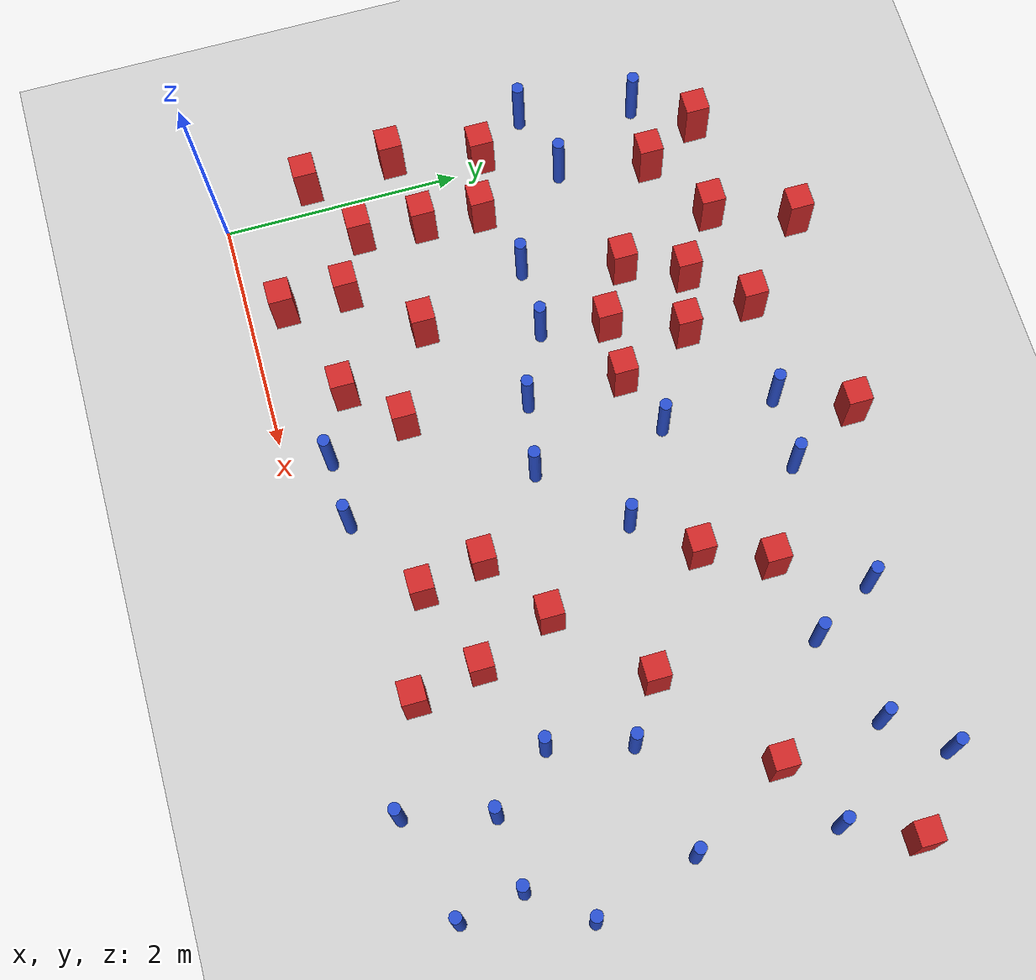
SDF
<sdf version="1.6">
 <world name="default">
  <model name="ground_plane">
   <static>1</static>
   <link name="link">
    <collision name="collision">
     <geometry><plane><normal>0 0 1</normal><size>100 100</size></plane></geometry>
     <surface><friction><ode><mu>100</mu><mu2>50</mu2></ode></friction></surface>
    </collision>
    <visual name="visual">
     <cast_shadows>0</cast_shadows>
     <geometry><plane><normal>0 0 1</normal><size>100 100</size></plane></geometry>
     <material>
      <ambient>1.0 1.0 1.0 1.0</ambient>
      <diffuse>0.8 0.8 0.8 1.0</diffuse>
      <specular>0.01 0.01 0.01 1.000000</specular>
     </material>
    </visual>
   </link>
  </model>
  <model name="square_post_obstacle13">
   <static>true</static>
   <pose>0.120368586204 4.11371070803 1.91545236811e-07 -7.35059704564e-06 1.12565212e-07 2.39332434364e-05</pose>
   <link name="link">
    <pose>0 0 0.25 0 -0 0</pose>
    <inertial>
     <mass>100</mass>
     <inertia>
      <ixx>0.166667</ixx>
      <ixy>0</ixy>
      <ixz>0</ixz>
      <iyy>0.166667</iyy>
      <iyz>0</iyz>
      <izz>0.166667</izz>
     </inertia>
    </inertial>
    <collision name="collision"><geometry><box><size>.2 .2 .5</size></box></geometry></collision>
    <visual name="visual">
     <geometry><box><size>.2 .2 .5</size></box></geometry>
     <material>
      <script><name>Gazebo/Red</name><uri>file://media/materials/scripts/gazebo.material</uri></script>
     </material>
    </visual>
   </link>
  </model>
  <model name="square_post_obstacle16">
   <static>true</static>
   <pose>4.03661646404 1.73327467691 1.91545236811e-07 -7.35059704564e-06 1.12565212e-07 2.39332434364e-05</pose>
   <link name="link">
    <pose>0 0 0.25 0 -0 0</pose>
    <inertial>
     <mass>100</mass>
     <inertia>
      <ixx>0.166667</ixx>
      <ixy>0</ixy>
      <ixz>0</ixz>
      <iyy>0.166667</iyy>
      <iyz>0</iyz>
      <izz>0.166667</izz>
     </inertia>
    </inertial>
    <collision name="collision"><geometry><box><size>.2 .2 .5</size></box></geometry></collision>
    <visual name="visual">
     <geometry><box><size>.2 .2 .5</size></box></geometry>
     <material>
      <script><name>Gazebo/Red</name><uri>file://media/materials/scripts/gazebo.material</uri></script>
     </material>
    </visual>
   </link>
  </model>
  <model name="square_post_obstacle19">
   <static>true</static>
   <pose>3.56690678454 0.822996285619 1.91545236811e-07 -7.35059704564e-06 1.12565212e-07 2.39332434364e-05</pose>
   <link name="link">
    <pose>0 0 0.25 0 -0 0</pose>
    <inertial>
     <mass>100</mass>
     <inertia>
      <ixx>0.166667</ixx>
      <ixy>0</ixy>
      <ixz>0</ixz>
      <iyy>0.166667</iyy>
      <iyz>0</iyz>
      <izz>0.166667</izz>
     </inertia>
    </inertial>
    <collision name="collision"><geometry><box><size>.2 .2 .5</size></box></geometry></collision>
    <visual name="visual">
     <geometry><box><size>.2 .2 .5</size></box></geometry>
     <material>
      <script><name>Gazebo/Red</name><uri>file://media/materials/scripts/gazebo.material</uri></script>
     </material>
    </visual>
   </link>
  </model>
  <model name="pole_obstacle14">
   <static>true</static>
   <pose>4.46650006474 4.23157202616 7.38925637345e-09 -8.47170692796e-08 1.24976764786e-08 -1.74513093032e-07</pose>
   <link name="link">
    <pose>0 0 0.3 0 -0 0</pose>
    <inertial>
     <mass>1</mass>
     <inertia><ixx>0.145833</ixx><ixy>0</ixy><ixz>0</ixz><iyy>0.145833</iyy><iyz>0</iyz><izz>0.125</izz></inertia>
    </inertial>
    <collision name="collision">
     <geometry><cylinder><radius>0.05</radius><length>.6</length></cylinder></geometry>
    </collision>
    <visual name="visual">
     <geometry><cylinder><radius>0.05</radius><length>.6</length></cylinder></geometry>
     <material>
      <script><name>Gazebo/Blue</name><uri>file://media/materials/scripts/gazebo.material</uri></script>
     </material>
    </visual>
   </link>
  </model>
  <model name="square_post_obstacle27">
   <static>true</static>
   <pose>2.1339538553 1.03794251236 1.91545236811e-07 -7.35059704564e-06 1.12565212e-07 2.39332434364e-05</pose>
   <link name="link">
    <pose>0 0 0.25 0 -0 0</pose>
    <inertial>
     <mass>100</mass>
     <inertia>
      <ixx>0.166667</ixx>
      <ixy>0</ixy>
      <ixz>0</ixz>
      <iyy>0.166667</iyy>
      <iyz>0</iyz>
      <izz>0.166667</izz>
     </inertia>
    </inertial>
    <collision name="collision"><geometry><box><size>.2 .2 .5</size></box></geometry></collision>
    <visual name="visual">
     <geometry><box><size>.2 .2 .5</size></box></geometry>
     <material>
      <script><name>Gazebo/Red</name><uri>file://media/materials/scripts/gazebo.material</uri></script>
     </material>
    </visual>
   </link>
  </model>
  <model name="square_post_obstacle34">
   <static>true</static>
   <pose>1.37013246106 1.39222518257 1.91545236811e-07 -7.35059704564e-06 1.12565212e-07 2.39332434364e-05</pose>
   <link name="link">
    <pose>0 0 0.25 0 -0 0</pose>
    <inertial>
     <mass>100</mass>
     <inertia>
      <ixx>0.166667</ixx>
      <ixy>0</ixy>
      <ixz>0</ixz>
      <iyy>0.166667</iyy>
      <iyz>0</iyz>
      <izz>0.166667</izz>
     </inertia>
    </inertial>
    <collision name="collision"><geometry><box><size>.2 .2 .5</size></box></geometry></collision>
    <visual name="visual">
     <geometry><box><size>.2 .2 .5</size></box></geometry>
     <material>
      <script><name>Gazebo/Red</name><uri>file://media/materials/scripts/gazebo.material</uri></script>
     </material>
    </visual>
   </link>
  </model>
  <model name="pole_obstacle33">
   <static>true</static>
   <pose>1.06263178837 2.32051331843 7.38925637345e-09 -8.47170692799e-08 1.24976765053e-08 -1.74513093017e-07</pose>
   <link name="link">
    <pose>0 0 0.3 0 -0 0</pose>
    <inertial>
     <mass>1</mass>
     <inertia><ixx>0.145833</ixx><ixy>0</ixy><ixz>0</ixz><iyy>0.145833</iyy><iyz>0</iyz><izz>0.125</izz></inertia>
    </inertial>
    <collision name="collision">
     <geometry><cylinder><radius>0.05</radius><length>.6</length></cylinder></geometry>
    </collision>
    <visual name="visual">
     <geometry><cylinder><radius>0.05</radius><length>.6</length></cylinder></geometry>
     <material>
      <script><name>Gazebo/Blue</name><uri>file://media/materials/scripts/gazebo.material</uri></script>
     </material>
    </visual>
   </link>
  </model>
  <model name="pole_obstacle41">
   <static>true</static>
   <pose>2.24314573179 2.05285384189 7.38925637345e-09 -8.47170692798e-08 1.24976764939e-08 -1.74513093025e-07</pose>
   <link name="link">
    <pose>0 0 0.3 0 -0 0</pose>
    <inertial>
     <mass>1</mass>
     <inertia><ixx>0.145833</ixx><ixy>0</ixy><ixz>0</ixz><iyy>0.145833</iyy><iyz>0</iyz><izz>0.125</izz></inertia>
    </inertial>
    <collision name="collision">
     <geometry><cylinder><radius>0.05</radius><length>.6</length></cylinder></geometry>
    </collision>
    <visual name="visual">
     <geometry><cylinder><radius>0.05</radius><length>.6</length></cylinder></geometry>
     <material>
      <script><name>Gazebo/Blue</name><uri>file://media/materials/scripts/gazebo.material</uri></script>
     </material>
    </visual>
   </link>
  </model>
  <model name="pole_obstacle46">
   <static>true</static>
   <pose>5.19227680547 2.09107300461 7.38925637345e-09 -8.47170692798e-08 1.24976764937e-08 -1.74513093023e-07</pose>
   <link name="link">
    <pose>0 0 0.3 0 -0 0</pose>
    <inertial>
     <mass>1</mass>
     <inertia><ixx>0.145833</ixx><ixy>0</ixy><ixz>0</ixz><iyy>0.145833</iyy><iyz>0</iyz><izz>0.125</izz></inertia>
    </inertial>
    <collision name="collision">
     <geometry><cylinder><radius>0.05</radius><length>.6</length></cylinder></geometry>
    </collision>
    <visual name="visual">
     <geometry><cylinder><radius>0.05</radius><length>.6</length></cylinder></geometry>
     <material>
      <script><name>Gazebo/Blue</name><uri>file://media/materials/scripts/gazebo.material</uri></script>
     </material>
    </visual>
   </link>
  </model>
  <model name="pole_obstacle55">
   <static>true</static>
   <pose>5.52945134723 3.96751100248 7.38925637345e-09 -8.47170692798e-08 1.2497676496e-08 -1.74513093023e-07</pose>
   <link name="link">
    <pose>0 0 0.3 0 -0 0</pose>
    <inertial>
     <mass>1</mass>
     <inertia><ixx>0.145833</ixx><ixy>0</ixy><ixz>0</ixz><iyy>0.145833</iyy><iyz>0</iyz><izz>0.125</izz></inertia>
    </inertial>
    <collision name="collision">
     <geometry><cylinder><radius>0.05</radius><length>.6</length></cylinder></geometry>
    </collision>
    <visual name="visual">
     <geometry><cylinder><radius>0.05</radius><length>.6</length></cylinder></geometry>
     <material>
      <script><name>Gazebo/Blue</name><uri>file://media/materials/scripts/gazebo.material</uri></script>
     </material>
    </visual>
   </link>
  </model>
  <model name="square_post_obstacle59">
   <static>true</static>
   <pose>0.981902032165 3.9878752416 1.91545236811e-07 -7.35059704564e-06 1.12565212e-07 2.39332434364e-05</pose>
   <link name="link">
    <pose>0 0 0.25 0 -0 0</pose>
    <inertial>
     <mass>100</mass>
     <inertia>
      <ixx>0.166667</ixx>
      <ixy>0</ixy>
      <ixz>0</ixz>
      <iyy>0.166667</iyy>
      <iyz>0</iyz>
      <izz>0.166667</izz>
     </inertia>
    </inertial>
    <collision name="collision"><geometry><box><size>.2 .2 .5</size></box></geometry></collision>
    <visual name="visual">
     <geometry><box><size>.2 .2 .5</size></box></geometry>
     <material>
      <script><name>Gazebo/Red</name><uri>file://media/materials/scripts/gazebo.material</uri></script>
     </material>
    </visual>
   </link>
  </model>
  <model name="pole_obstacle57">
   <static>true</static>
   <pose>2.85758994423 0.398614194864 7.38925637345e-09 -8.471706928e-08 1.24976765172e-08 -1.74513093013e-07</pose>
   <link name="link">
    <pose>0 0 0.3 0 -0 0</pose>
    <inertial>
     <mass>1</mass>
     <inertia><ixx>0.145833</ixx><ixy>0</ixy><ixz>0</ixz><iyy>0.145833</iyy><iyz>0</iyz><izz>0.125</izz></inertia>
    </inertial>
    <collision name="collision">
     <geometry><cylinder><radius>0.05</radius><length>.6</length></cylinder></geometry>
    </collision>
    <visual name="visual">
     <geometry><cylinder><radius>0.05</radius><length>.6</length></cylinder></geometry>
     <material>
      <script><name>Gazebo/Blue</name><uri>file://media/materials/scripts/gazebo.material</uri></script>
     </material>
    </visual>
   </link>
  </model>
  <model name="pole_obstacle59">
   <static>true</static>
   <pose>6.38331480544 1.43465235193 7.38925637345e-09 -8.471706928e-08 1.24976765134e-08 -1.74513093015e-07</pose>
   <link name="link">
    <pose>0 0 0.3 0 -0 0</pose>
    <inertial>
     <mass>1</mass>
     <inertia><ixx>0.145833</ixx><ixy>0</ixy><ixz>0</ixz><iyy>0.145833</iyy><iyz>0</iyz><izz>0.125</izz></inertia>
    </inertial>
    <collision name="collision">
     <geometry><cylinder><radius>0.05</radius><length>.6</length></cylinder></geometry>
    </collision>
    <visual name="visual">
     <geometry><cylinder><radius>0.05</radius><length>.6</length></cylinder></geometry>
     <material>
      <script><name>Gazebo/Blue</name><uri>file://media/materials/scripts/gazebo.material</uri></script>
     </material>
    </visual>
   </link>
  </model>
  <model name="square_post_obstacle62">
   <static>true</static>
   <pose>4.2881562676 1.10900680971 1.91545236811e-07 -7.35059704564e-06 1.12565212e-07 2.39332434364e-05</pose>
   <link name="link">
    <pose>0 0 0.25 0 -0 0</pose>
    <inertial>
     <mass>100</mass>
     <inertia>
      <ixx>0.166667</ixx>
      <ixy>0</ixy>
      <ixz>0</ixz>
      <iyy>0.166667</iyy>
      <iyz>0</iyz>
      <izz>0.166667</izz>
     </inertia>
    </inertial>
    <collision name="collision"><geometry><box><size>.2 .2 .5</size></box></geometry></collision>
    <visual name="visual">
     <geometry><box><size>.2 .2 .5</size></box></geometry>
     <material>
      <script><name>Gazebo/Red</name><uri>file://media/materials/scripts/gazebo.material</uri></script>
     </material>
    </visual>
   </link>
  </model>
  <model name="square_post_obstacle77">
   <static>true</static>
   <pose>-0.0677738719482 2.26297407549 1.91545236811e-07 -7.35059704564e-06 1.12565212e-07 2.39332434364e-05</pose>
   <link name="link">
    <pose>0 0 0.25 0 -0 0</pose>
    <inertial>
     <mass>100</mass>
     <inertia>
      <ixx>0.166667</ixx>
      <ixy>0</ixy>
      <ixz>0</ixz>
      <iyy>0.166667</iyy>
      <iyz>0</iyz>
      <izz>0.166667</izz>
     </inertia>
    </inertial>
    <collision name="collision"><geometry><box><size>.2 .2 .5</size></box></geometry></collision>
    <visual name="visual">
     <geometry><box><size>.2 .2 .5</size></box></geometry>
     <material>
      <script><name>Gazebo/Red</name><uri>file://media/materials/scripts/gazebo.material</uri></script>
     </material>
    </visual>
   </link>
  </model>
  <model name="square_post_obstacle80">
   <static>true</static>
   <pose>4.08032705508 3.55443886536 1.91545236811e-07 -7.35059704564e-06 1.12565212e-07 2.39332434364e-05</pose>
   <link name="link">
    <pose>0 0 0.25 0 -0 0</pose>
    <inertial>
     <mass>100</mass>
     <inertia>
      <ixx>0.166667</ixx>
      <ixy>0</ixy>
      <ixz>0</ixz>
      <iyy>0.166667</iyy>
      <iyz>0</iyz>
      <izz>0.166667</izz>
     </inertia>
    </inertial>
    <collision name="collision"><geometry><box><size>.2 .2 .5</size></box></geometry></collision>
    <visual name="visual">
     <geometry><box><size>.2 .2 .5</size></box></geometry>
     <material>
      <script><name>Gazebo/Red</name><uri>file://media/materials/scripts/gazebo.material</uri></script>
     </material>
    </visual>
   </link>
  </model>
  <model name="pole_obstacle87">
   <static>true</static>
   <pose>2.29442885568 0.380179138892 7.38925637345e-09 -8.471706928e-08 1.24976765172e-08 -1.74513093013e-07</pose>
   <link name="link">
    <pose>0 0 0.3 0 -0 0</pose>
    <inertial>
     <mass>1</mass>
     <inertia><ixx>0.145833</ixx><ixy>0</ixy><ixz>0</ixz><iyy>0.145833</iyy><iyz>0</iyz><izz>0.125</izz></inertia>
    </inertial>
    <collision name="collision">
     <geometry><cylinder><radius>0.05</radius><length>.6</length></cylinder></geometry>
    </collision>
    <visual name="visual">
     <geometry><cylinder><radius>0.05</radius><length>.6</length></cylinder></geometry>
     <material>
      <script><name>Gazebo/Blue</name><uri>file://media/materials/scripts/gazebo.material</uri></script>
     </material>
    </visual>
   </link>
  </model>
  <model name="square_post_obstacle82">
   <static>true</static>
   <pose>1.97479735634 3.47989304587 1.91545236811e-07 -7.35059704564e-06 1.12565212e-07 2.39332434364e-05</pose>
   <link name="link">
    <pose>0 0 0.25 0 -0 0</pose>
    <inertial>
     <mass>100</mass>
     <inertia>
      <ixx>0.166667</ixx>
      <ixy>0</ixy>
      <ixz>0</ixz>
      <iyy>0.166667</iyy>
      <iyz>0</iyz>
      <izz>0.166667</izz>
     </inertia>
    </inertial>
    <collision name="collision"><geometry><box><size>.2 .2 .5</size></box></geometry></collision>
    <visual name="visual">
     <geometry><box><size>.2 .2 .5</size></box></geometry>
     <material>
      <script><name>Gazebo/Red</name><uri>file://media/materials/scripts/gazebo.material</uri></script>
     </material>
    </visual>
   </link>
  </model>
  <model name="pole_obstacle102">
   <static>true</static>
   <pose>6.20858520013 3.40559494392 7.38925637345e-09 -8.47170692798e-08 1.24976764937e-08 -1.74513093023e-07</pose>
   <link name="link">
    <pose>0 0 0.3 0 -0 0</pose>
    <inertial>
     <mass>1</mass>
     <inertia><ixx>0.145833</ixx><ixy>0</ixy><ixz>0</ixz><iyy>0.145833</iyy><iyz>0</iyz><izz>0.125</izz></inertia>
    </inertial>
    <collision name="collision">
     <geometry><cylinder><radius>0.05</radius><length>.6</length></cylinder></geometry>
    </collision>
    <visual name="visual">
     <geometry><cylinder><radius>0.05</radius><length>.6</length></cylinder></geometry>
     <material>
      <script><name>Gazebo/Blue</name><uri>file://media/materials/scripts/gazebo.material</uri></script>
     </material>
    </visual>
   </link>
  </model>
  <model name="pole_obstacle104">
   <static>true</static>
   <pose>6.11435137283 0.454639483458 7.38925637345e-09 -8.47170692799e-08 1.24976765124e-08 -1.74513093015e-07</pose>
   <link name="link">
    <pose>0 0 0.3 0 -0 0</pose>
    <inertial>
     <mass>1</mass>
     <inertia><ixx>0.145833</ixx><ixy>0</ixy><ixz>0</ixz><iyy>0.145833</iyy><iyz>0</iyz><izz>0.125</izz></inertia>
    </inertial>
    <collision name="collision">
     <geometry><cylinder><radius>0.05</radius><length>.6</length></cylinder></geometry>
    </collision>
    <visual name="visual">
     <geometry><cylinder><radius>0.05</radius><length>.6</length></cylinder></geometry>
     <material>
      <script><name>Gazebo/Blue</name><uri>file://media/materials/scripts/gazebo.material</uri></script>
     </material>
    </visual>
   </link>
  </model>
  <model name="square_post_obstacle92">
   <static>true</static>
   <pose>4.72504804673 2.38423844962 1.91545236811e-07 -7.35059704564e-06 1.12565212e-07 2.39332434364e-05</pose>
   <link name="link">
    <pose>0 0 0.25 0 -0 0</pose>
    <inertial>
     <mass>100</mass>
     <inertia>
      <ixx>0.166667</ixx>
      <ixy>0</ixy>
      <ixz>0</ixz>
      <iyy>0.166667</iyy>
      <iyz>0</iyz>
      <izz>0.166667</izz>
     </inertia>
    </inertial>
    <collision name="collision"><geometry><box><size>.2 .2 .5</size></box></geometry></collision>
    <visual name="visual">
     <geometry><box><size>.2 .2 .5</size></box></geometry>
     <material>
      <script><name>Gazebo/Red</name><uri>file://media/materials/scripts/gazebo.material</uri></script>
     </material>
    </visual>
   </link>
  </model>
  <model name="square_post_obstacle93">
   <static>true</static>
   <pose>-0.242364583825 1.51413110034 1.91545236811e-07 -7.35059704564e-06 1.12565212e-07 2.39332434364e-05</pose>
   <link name="link">
    <pose>0 0 0.25 0 -0 0</pose>
    <inertial>
     <mass>100</mass>
     <inertia>
      <ixx>0.166667</ixx>
      <ixy>0</ixy>
      <ixz>0</ixz>
      <iyy>0.166667</iyy>
      <iyz>0</iyz>
      <izz>0.166667</izz>
     </inertia>
    </inertial>
    <collision name="collision"><geometry><box><size>.2 .2 .5</size></box></geometry></collision>
    <visual name="visual">
     <geometry><box><size>.2 .2 .5</size></box></geometry>
     <material>
      <script><name>Gazebo/Red</name><uri>file://media/materials/scripts/gazebo.material</uri></script>
     </material>
    </visual>
   </link>
  </model>
  <model name="square_post_obstacle94">
   <static>true</static>
   <pose>0.882953080885 0.314373968212 1.91545236811e-07 -7.35059704564e-06 1.12565212e-07 2.39332434364e-05</pose>
   <link name="link">
    <pose>0 0 0.25 0 -0 0</pose>
    <inertial>
     <mass>100</mass>
     <inertia>
      <ixx>0.166667</ixx>
      <ixy>0</ixy>
      <ixz>0</ixz>
      <iyy>0.166667</iyy>
      <iyz>0</iyz>
      <izz>0.166667</izz>
     </inertia>
    </inertial>
    <collision name="collision"><geometry><box><size>.2 .2 .5</size></box></geometry></collision>
    <visual name="visual">
     <geometry><box><size>.2 .2 .5</size></box></geometry>
     <material>
      <script><name>Gazebo/Red</name><uri>file://media/materials/scripts/gazebo.material</uri></script>
     </material>
    </visual>
   </link>
  </model>
  <model name="pole_obstacle118">
   <static>true</static>
   <pose>-0.348708519306 2.68286385354 7.38925637345e-09 -8.471706928e-08 1.24976765084e-08 -1.74513093017e-07</pose>
   <link name="link">
    <pose>0 0 0.3 0 -0 0</pose>
    <inertial>
     <mass>1</mass>
     <inertia><ixx>0.145833</ixx><ixy>0</ixy><ixz>0</ixz><iyy>0.145833</iyy><iyz>0</iyz><izz>0.125</izz></inertia>
    </inertial>
    <collision name="collision">
     <geometry><cylinder><radius>0.05</radius><length>.6</length></cylinder></geometry>
    </collision>
    <visual name="visual">
     <geometry><cylinder><radius>0.05</radius><length>.6</length></cylinder></geometry>
     <material>
      <script><name>Gazebo/Blue</name><uri>file://media/materials/scripts/gazebo.material</uri></script>
     </material>
    </visual>
   </link>
  </model>
  <model name="square_post_obstacle104">
   <static>true</static>
   <pose>1.48257605331 3.63156597947 1.91545236811e-07 -7.35059704564e-06 1.12565212e-07 2.39332434364e-05</pose>
   <link name="link">
    <pose>0 0 0.25 0 -0 0</pose>
    <inertial>
     <mass>100</mass>
     <inertia>
      <ixx>0.166667</ixx>
      <ixy>0</ixy>
      <ixz>0</ixz>
      <iyy>0.166667</iyy>
      <iyz>0</iyz>
      <izz>0.166667</izz>
     </inertia>
    </inertial>
    <collision name="collision"><geometry><box><size>.2 .2 .5</size></box></geometry></collision>
    <visual name="visual">
     <geometry><box><size>.2 .2 .5</size></box></geometry>
     <material>
      <script><name>Gazebo/Red</name><uri>file://media/materials/scripts/gazebo.material</uri></script>
     </material>
    </visual>
   </link>
  </model>
  <model name="square_post_obstacle114">
   <static>true</static>
   <pose>1.88503265582 4.07185366877 1.91545236811e-07 -7.35059704564e-06 1.12565212e-07 2.39332434364e-05</pose>
   <link name="link">
    <pose>0 0 0.25 0 -0 0</pose>
    <inertial>
     <mass>100</mass>
     <inertia>
      <ixx>0.166667</ixx>
      <ixy>0</ixy>
      <ixz>0</ixz>
      <iyy>0.166667</iyy>
      <iyz>0</iyz>
      <izz>0.166667</izz>
     </inertia>
    </inertial>
    <collision name="collision"><geometry><box><size>.2 .2 .5</size></box></geometry></collision>
    <visual name="visual">
     <geometry><box><size>.2 .2 .5</size></box></geometry>
     <material>
      <script><name>Gazebo/Red</name><uri>file://media/materials/scripts/gazebo.material</uri></script>
     </material>
    </visual>
   </link>
  </model>
  <model name="square_post_obstacle115">
   <static>true</static>
   <pose>5.63243066551 3.11182647579 1.91545236811e-07 -7.35059704564e-06 1.12565212e-07 2.39332434364e-05</pose>
   <link name="link">
    <pose>0 0 0.25 0 -0 0</pose>
    <inertial>
     <mass>100</mass>
     <inertia>
      <ixx>0.166667</ixx>
      <ixy>0</ixy>
      <ixz>0</ixz>
      <iyy>0.166667</iyy>
      <iyz>0</iyz>
      <izz>0.166667</izz>
     </inertia>
    </inertial>
    <collision name="collision"><geometry><box><size>.2 .2 .5</size></box></geometry></collision>
    <visual name="visual">
     <geometry><box><size>.2 .2 .5</size></box></geometry>
     <material>
      <script><name>Gazebo/Red</name><uri>file://media/materials/scripts/gazebo.material</uri></script>
     </material>
    </visual>
   </link>
  </model>
  <model name="square_post_obstacle123">
   <static>true</static>
   <pose>0.882068100201 0.856953571132 1.91545236811e-07 -7.35059704564e-06 1.12565212e-07 2.39332434364e-05</pose>
   <link name="link">
    <pose>0 0 0.25 0 -0 0</pose>
    <inertial>
     <mass>100</mass>
     <inertia>
      <ixx>0.166667</ixx>
      <ixy>0</ixy>
      <ixz>0</ixz>
      <iyy>0.166667</iyy>
      <iyz>0</iyz>
      <izz>0.166667</izz>
     </inertia>
    </inertial>
    <collision name="collision"><geometry><box><size>.2 .2 .5</size></box></geometry></collision>
    <visual name="visual">
     <geometry><box><size>.2 .2 .5</size></box></geometry>
     <material>
      <script><name>Gazebo/Red</name><uri>file://media/materials/scripts/gazebo.material</uri></script>
     </material>
    </visual>
   </link>
  </model>
  <model name="square_post_obstacle132">
   <static>true</static>
   <pose>1.74143148768 2.87021852417 1.91545236811e-07 -7.35059704564e-06 1.12565212e-07 2.39332434364e-05</pose>
   <link name="link">
    <pose>0 0 0.25 0 -0 0</pose>
    <inertial>
     <mass>100</mass>
     <inertia>
      <ixx>0.166667</ixx>
      <ixy>0</ixy>
      <ixz>0</ixz>
      <iyy>0.166667</iyy>
      <iyz>0</iyz>
      <izz>0.166667</izz>
     </inertia>
    </inertial>
    <collision name="collision"><geometry><box><size>.2 .2 .5</size></box></geometry></collision>
    <visual name="visual">
     <geometry><box><size>.2 .2 .5</size></box></geometry>
     <material>
      <script><name>Gazebo/Red</name><uri>file://media/materials/scripts/gazebo.material</uri></script>
     </material>
    </visual>
   </link>
  </model>
  <model name="square_post_obstacle135">
   <static>true</static>
   <pose>3.84251247238 3.01662229569 1.91545236811e-07 -7.35059704564e-06 1.12565212e-07 2.39332434364e-05</pose>
   <link name="link">
    <pose>0 0 0.25 0 -0 0</pose>
    <inertial>
     <mass>100</mass>
     <inertia>
      <ixx>0.166667</ixx>
      <ixy>0</ixy>
      <ixz>0</ixz>
      <iyy>0.166667</iyy>
      <iyz>0</iyz>
      <izz>0.166667</izz>
     </inertia>
    </inertial>
    <collision name="collision"><geometry><box><size>.2 .2 .5</size></box></geometry></collision>
    <visual name="visual">
     <geometry><box><size>.2 .2 .5</size></box></geometry>
     <material>
      <script><name>Gazebo/Red</name><uri>file://media/materials/scripts/gazebo.material</uri></script>
     </material>
    </visual>
   </link>
  </model>
  <model name="pole_obstacle148">
   <static>true</static>
   <pose>2.74103206954 3.05652247821 7.38925637345e-09 -8.47170692798e-08 1.24976764939e-08 -1.74513093025e-07</pose>
   <link name="link">
    <pose>0 0 0.3 0 -0 0</pose>
    <inertial>
     <mass>1</mass>
     <inertia><ixx>0.145833</ixx><ixy>0</ixy><ixz>0</ixz><iyy>0.145833</iyy><iyz>0</iyz><izz>0.125</izz></inertia>
    </inertial>
    <collision name="collision">
     <geometry><cylinder><radius>0.05</radius><length>.6</length></cylinder></geometry>
    </collision>
    <visual name="visual">
     <geometry><cylinder><radius>0.05</radius><length>.6</length></cylinder></geometry>
     <material>
      <script><name>Gazebo/Blue</name><uri>file://media/materials/scripts/gazebo.material</uri></script>
     </material>
    </visual>
   </link>
  </model>
  <model name="square_post_obstacle137">
   <static>true</static>
   <pose>0.470571934999 2.12769048364 1.91545236811e-07 -7.35059704564e-06 1.12565212e-07 2.39332434364e-05</pose>
   <link name="link">
    <pose>0 0 0.25 0 -0 0</pose>
    <inertial>
     <mass>100</mass>
     <inertia>
      <ixx>0.166667</ixx>
      <ixy>0</ixy>
      <ixz>0</ixz>
      <iyy>0.166667</iyy>
      <iyz>0</iyz>
      <izz>0.166667</izz>
     </inertia>
    </inertial>
    <collision name="collision"><geometry><box><size>.2 .2 .5</size></box></geometry></collision>
    <visual name="visual">
     <geometry><box><size>.2 .2 .5</size></box></geometry>
     <material>
      <script><name>Gazebo/Red</name><uri>file://media/materials/scripts/gazebo.material</uri></script>
     </material>
    </visual>
   </link>
  </model>
  <model name="square_post_obstacle138">
   <static>true</static>
   <pose>4.39946070165 0.550175745786 1.91545236811e-07 -7.35059704564e-06 1.12565212e-07 2.39332434364e-05</pose>
   <link name="link">
    <pose>0 0 0.25 0 -0 0</pose>
    <inertial>
     <mass>100</mass>
     <inertia>
      <ixx>0.166667</ixx>
      <ixy>0</ixy>
      <ixz>0</ixz>
      <iyy>0.166667</iyy>
      <iyz>0</iyz>
      <izz>0.166667</izz>
     </inertia>
    </inertial>
    <collision name="collision"><geometry><box><size>.2 .2 .5</size></box></geometry></collision>
    <visual name="visual">
     <geometry><box><size>.2 .2 .5</size></box></geometry>
     <material>
      <script><name>Gazebo/Red</name><uri>file://media/materials/scripts/gazebo.material</uri></script>
     </material>
    </visual>
   </link>
  </model>
  <model name="pole_obstacle153">
   <static>true</static>
   <pose>5.42814563597 0.931843334333 7.38925637345e-09 -8.47170692799e-08 1.24976765038e-08 -1.74513093018e-07</pose>
   <link name="link">
    <pose>0 0 0.3 0 -0 0</pose>
    <inertial>
     <mass>1</mass>
     <inertia><ixx>0.145833</ixx><ixy>0</ixy><ixz>0</ixz><iyy>0.145833</iyy><iyz>0</iyz><izz>0.125</izz></inertia>
    </inertial>
    <collision name="collision">
     <geometry><cylinder><radius>0.05</radius><length>.6</length></cylinder></geometry>
    </collision>
    <visual name="visual">
     <geometry><cylinder><radius>0.05</radius><length>.6</length></cylinder></geometry>
     <material>
      <script><name>Gazebo/Blue</name><uri>file://media/materials/scripts/gazebo.material</uri></script>
     </material>
    </visual>
   </link>
  </model>
  <model name="pole_obstacle155">
   <static>true</static>
   <pose>2.74468234027 4.00764766648 7.38925637345e-09 -8.47170692799e-08 1.24976765036e-08 -1.74513093019e-07</pose>
   <link name="link">
    <pose>0 0 0.3 0 -0 0</pose>
    <inertial>
     <mass>1</mass>
     <inertia><ixx>0.145833</ixx><ixy>0</ixy><ixz>0</ixz><iyy>0.145833</iyy><iyz>0</iyz><izz>0.125</izz></inertia>
    </inertial>
    <collision name="collision">
     <geometry><cylinder><radius>0.05</radius><length>.6</length></cylinder></geometry>
    </collision>
    <visual name="visual">
     <geometry><cylinder><radius>0.05</radius><length>.6</length></cylinder></geometry>
     <material>
      <script><name>Gazebo/Blue</name><uri>file://media/materials/scripts/gazebo.material</uri></script>
     </material>
    </visual>
   </link>
  </model>
  <model name="square_post_obstacle150">
   <static>true</static>
   <pose>0.43251759895 1.62493295151 1.91545236811e-07 -7.35059704564e-06 1.12565212e-07 2.39332434364e-05</pose>
   <link name="link">
    <pose>0 0 0.25 0 -0 0</pose>
    <inertial>
     <mass>100</mass>
     <inertia>
      <ixx>0.166667</ixx>
      <ixy>0</ixy>
      <ixz>0</ixz>
      <iyy>0.166667</iyy>
      <iyz>0</iyz>
      <izz>0.166667</izz>
     </inertia>
    </inertial>
    <collision name="collision"><geometry><box><size>.2 .2 .5</size></box></geometry></collision>
    <visual name="visual">
     <geometry><box><size>.2 .2 .5</size></box></geometry>
     <material>
      <script><name>Gazebo/Red</name><uri>file://media/materials/scripts/gazebo.material</uri></script>
     </material>
    </visual>
   </link>
  </model>
  <model name="pole_obstacle165">
   <static>true</static>
   <pose>3.4650186092 2.56120234657 7.38925637345e-09 -8.47170692798e-08 1.24976764939e-08 -1.74513093025e-07</pose>
   <link name="link">
    <pose>0 0 0.3 0 -0 0</pose>
    <inertial>
     <mass>1</mass>
     <inertia><ixx>0.145833</ixx><ixy>0</ixy><ixz>0</ixz><iyy>0.145833</iyy><iyz>0</iyz><izz>0.125</izz></inertia>
    </inertial>
    <collision name="collision">
     <geometry><cylinder><radius>0.05</radius><length>.6</length></cylinder></geometry>
    </collision>
    <visual name="visual">
     <geometry><cylinder><radius>0.05</radius><length>.6</length></cylinder></geometry>
     <material>
      <script><name>Gazebo/Blue</name><uri>file://media/materials/scripts/gazebo.material</uri></script>
     </material>
    </visual>
   </link>
  </model>
  <model name="pole_obstacle167">
   <static>true</static>
   <pose>6.12320606424 2.29447510094 7.38925637345e-09 -8.47170692798e-08 1.24976764937e-08 -1.74513093023e-07</pose>
   <link name="link">
    <pose>0 0 0.3 0 -0 0</pose>
    <inertial>
     <mass>1</mass>
     <inertia><ixx>0.145833</ixx><ixy>0</ixy><ixz>0</ixz><iyy>0.145833</iyy><iyz>0</iyz><izz>0.125</izz></inertia>
    </inertial>
    <collision name="collision">
     <geometry><cylinder><radius>0.05</radius><length>.6</length></cylinder></geometry>
    </collision>
    <visual name="visual">
     <geometry><cylinder><radius>0.05</radius><length>.6</length></cylinder></geometry>
     <material>
      <script><name>Gazebo/Blue</name><uri>file://media/materials/scripts/gazebo.material</uri></script>
     </material>
    </visual>
   </link>
  </model>
  <model name="pole_obstacle171">
   <static>true</static>
   <pose>4.77488015271 3.70169902299 7.38925637345e-09 -8.47170692798e-08 1.24976764937e-08 -1.74513093023e-07</pose>
   <link name="link">
    <pose>0 0 0.3 0 -0 0</pose>
    <inertial>
     <mass>1</mass>
     <inertia><ixx>0.145833</ixx><ixy>0</ixy><ixz>0</ixz><iyy>0.145833</iyy><iyz>0</iyz><izz>0.125</izz></inertia>
    </inertial>
    <collision name="collision">
     <geometry><cylinder><radius>0.05</radius><length>.6</length></cylinder></geometry>
    </collision>
    <visual name="visual">
     <geometry><cylinder><radius>0.05</radius><length>.6</length></cylinder></geometry>
     <material>
      <script><name>Gazebo/Blue</name><uri>file://media/materials/scripts/gazebo.material</uri></script>
     </material>
    </visual>
   </link>
  </model>
  <model name="square_post_obstacle163">
   <static>true</static>
   <pose>1.22940089813 4.6792443251 1.91545236811e-07 -7.35059704564e-06 1.12565212e-07 2.39332434364e-05</pose>
   <link name="link">
    <pose>0 0 0.25 0 -0 0</pose>
    <inertial>
     <mass>100</mass>
     <inertia>
      <ixx>0.166667</ixx>
      <ixy>0</ixy>
      <ixz>0</ixz>
      <iyy>0.166667</iyy>
      <iyz>0</iyz>
      <izz>0.166667</izz>
     </inertia>
    </inertial>
    <collision name="collision"><geometry><box><size>.2 .2 .5</size></box></geometry></collision>
    <visual name="visual">
     <geometry><box><size>.2 .2 .5</size></box></geometry>
     <material>
      <script><name>Gazebo/Red</name><uri>file://media/materials/scripts/gazebo.material</uri></script>
     </material>
    </visual>
   </link>
  </model>
  <model name="square_post_obstacle166">
   <static>true</static>
   <pose>0.392514431897 1.08787141683 1.91545236811e-07 -7.35059704564e-06 1.12565212e-07 2.39332434364e-05</pose>
   <link name="link">
    <pose>0 0 0.25 0 -0 0</pose>
    <inertial>
     <mass>100</mass>
     <inertia>
      <ixx>0.166667</ixx>
      <ixy>0</ixy>
      <ixz>0</ixz>
      <iyy>0.166667</iyy>
      <iyz>0</iyz>
      <izz>0.166667</izz>
     </inertia>
    </inertial>
    <collision name="collision"><geometry><box><size>.2 .2 .5</size></box></geometry></collision>
    <visual name="visual">
     <geometry><box><size>.2 .2 .5</size></box></geometry>
     <material>
      <script><name>Gazebo/Red</name><uri>file://media/materials/scripts/gazebo.material</uri></script>
     </material>
    </visual>
   </link>
  </model>
  <model name="square_post_obstacle168">
   <static>true</static>
   <pose>1.26770726356 3.13879738519 1.91545236811e-07 -7.35059704564e-06 1.12565212e-07 2.39332434364e-05</pose>
   <link name="link">
    <pose>0 0 0.25 0 -0 0</pose>
    <inertial>
     <mass>100</mass>
     <inertia>
      <ixx>0.166667</ixx>
      <ixy>0</ixy>
      <ixz>0</ixz>
      <iyy>0.166667</iyy>
      <iyz>0</iyz>
      <izz>0.166667</izz>
     </inertia>
    </inertial>
    <collision name="collision"><geometry><box><size>.2 .2 .5</size></box></geometry></collision>
    <visual name="visual">
     <geometry><box><size>.2 .2 .5</size></box></geometry>
     <material>
      <script><name>Gazebo/Red</name><uri>file://media/materials/scripts/gazebo.material</uri></script>
     </material>
    </visual>
   </link>
  </model>
  <model name="pole_obstacle180">
   <static>true</static>
   <pose>-0.182476602749 3.6498031854 7.38925637345e-09 -8.471706928e-08 1.2497676511e-08 -1.74513093013e-07</pose>
   <link name="link">
    <pose>0 0 0.3 0 -0 0</pose>
    <inertial>
     <mass>1</mass>
     <inertia><ixx>0.145833</ixx><ixy>0</ixy><ixz>0</ixz><iyy>0.145833</iyy><iyz>0</iyz><izz>0.125</izz></inertia>
    </inertial>
    <collision name="collision">
     <geometry><cylinder><radius>0.05</radius><length>.6</length></cylinder></geometry>
    </collision>
    <visual name="visual">
     <geometry><cylinder><radius>0.05</radius><length>.6</length></cylinder></geometry>
     <material>
      <script><name>Gazebo/Blue</name><uri>file://media/materials/scripts/gazebo.material</uri></script>
     </material>
    </visual>
   </link>
  </model>
  <model name="pole_obstacle181">
   <static>true</static>
   <pose>5.24224742724 0.219156109639 7.38925637345e-09 -8.471706928e-08 1.24976765136e-08 -1.74513093014e-07</pose>
   <link name="link">
    <pose>0 0 0.3 0 -0 0</pose>
    <inertial>
     <mass>1</mass>
     <inertia><ixx>0.145833</ixx><ixy>0</ixy><ixz>0</ixz><iyy>0.145833</iyy><iyz>0</iyz><izz>0.125</izz></inertia>
    </inertial>
    <collision name="collision">
     <geometry><cylinder><radius>0.05</radius><length>.6</length></cylinder></geometry>
    </collision>
    <visual name="visual">
     <geometry><cylinder><radius>0.05</radius><length>.6</length></cylinder></geometry>
     <material>
      <script><name>Gazebo/Blue</name><uri>file://media/materials/scripts/gazebo.material</uri></script>
     </material>
    </visual>
   </link>
  </model>
  <model name="square_post_obstacle172">
   <static>true</static>
   <pose>6.45822375438 3.96390138877 1.91545236811e-07 -7.35059704564e-06 1.12565212e-07 2.39332434364e-05</pose>
   <link name="link">
    <pose>0 0 0.25 0 -0 0</pose>
    <inertial>
     <mass>100</mass>
     <inertia>
      <ixx>0.166667</ixx>
      <ixy>0</ixy>
      <ixz>0</ixz>
      <iyy>0.166667</iyy>
      <iyz>0</iyz>
      <izz>0.166667</izz>
     </inertia>
    </inertial>
    <collision name="collision"><geometry><box><size>.2 .2 .5</size></box></geometry></collision>
    <visual name="visual">
     <geometry><box><size>.2 .2 .5</size></box></geometry>
     <material>
      <script><name>Gazebo/Red</name><uri>file://media/materials/scripts/gazebo.material</uri></script>
     </material>
    </visual>
   </link>
  </model>
  <model name="pole_obstacle186">
   <static>true</static>
   <pose>1.65359669123 2.32253080928 7.38925637345e-09 -8.47170692799e-08 1.24976765053e-08 -1.74513093017e-07</pose>
   <link name="link">
    <pose>0 0 0.3 0 -0 0</pose>
    <inertial>
     <mass>1</mass>
     <inertia><ixx>0.145833</ixx><ixy>0</ixy><ixz>0</ixz><iyy>0.145833</iyy><iyz>0</iyz><izz>0.125</izz></inertia>
    </inertial>
    <collision name="collision">
     <geometry><cylinder><radius>0.05</radius><length>.6</length></cylinder></geometry>
    </collision>
    <visual name="visual">
     <geometry><cylinder><radius>0.05</radius><length>.6</length></cylinder></geometry>
     <material>
      <script><name>Gazebo/Blue</name><uri>file://media/materials/scripts/gazebo.material</uri></script>
     </material>
    </visual>
   </link>
  </model>
  <model name="pole_obstacle189">
   <static>true</static>
   <pose>5.03133589068 1.42340712127 7.38925637345e-09 -8.471706928e-08 1.24976765134e-08 -1.74513093015e-07</pose>
   <link name="link">
    <pose>0 0 0.3 0 -0 0</pose>
    <inertial>
     <mass>1</mass>
     <inertia><ixx>0.145833</ixx><ixy>0</ixy><ixz>0</ixz><iyy>0.145833</iyy><iyz>0</iyz><izz>0.125</izz></inertia>
    </inertial>
    <collision name="collision">
     <geometry><cylinder><radius>0.05</radius><length>.6</length></cylinder></geometry>
    </collision>
    <visual name="visual">
     <geometry><cylinder><radius>0.05</radius><length>.6</length></cylinder></geometry>
     <material>
      <script><name>Gazebo/Blue</name><uri>file://media/materials/scripts/gazebo.material</uri></script>
     </material>
    </visual>
   </link>
  </model>
  <model name="pole_obstacle190">
   <static>true</static>
   <pose>6.02778961666 0.978811097888 7.38925637345e-09 -8.471706928e-08 1.24976765166e-08 -1.74513093011e-07</pose>
   <link name="link">
    <pose>0 0 0.3 0 -0 0</pose>
    <inertial>
     <mass>1</mass>
     <inertia><ixx>0.145833</ixx><ixy>0</ixy><ixz>0</ixz><iyy>0.145833</iyy><iyz>0</iyz><izz>0.125</izz></inertia>
    </inertial>
    <collision name="collision">
     <geometry><cylinder><radius>0.05</radius><length>.6</length></cylinder></geometry>
    </collision>
    <visual name="visual">
     <geometry><cylinder><radius>0.05</radius><length>.6</length></cylinder></geometry>
     <material>
      <script><name>Gazebo/Blue</name><uri>file://media/materials/scripts/gazebo.material</uri></script>
     </material>
    </visual>
   </link>
  </model>
  <model name="pole_obstacle200">
   <static>true</static>
   <pose>3.34565057444 3.98401484932 7.38925637345e-09 -8.47170692796e-08 1.24976764799e-08 -1.74513093033e-07</pose>
   <link name="link">
    <pose>0 0 0.3 0 -0 0</pose>
    <inertial>
     <mass>1</mass>
     <inertia><ixx>0.145833</ixx><ixy>0</ixy><ixz>0</ixz><iyy>0.145833</iyy><iyz>0</iyz><izz>0.125</izz></inertia>
    </inertial>
    <collision name="collision">
     <geometry><cylinder><radius>0.05</radius><length>.6</length></cylinder></geometry>
    </collision>
    <visual name="visual">
     <geometry><cylinder><radius>0.05</radius><length>.6</length></cylinder></geometry>
     <material>
      <script><name>Gazebo/Blue</name><uri>file://media/materials/scripts/gazebo.material</uri></script>
     </material>
    </visual>
   </link>
  </model>
  <model name="square_post_obstacle195">
   <static>true</static>
   <pose>3.46371164387 1.34582473003 1.91545236811e-07 -7.35059704564e-06 1.12565212e-07 2.39332434364e-05</pose>
   <link name="link">
    <pose>0 0 0.25 0 -0 0</pose>
    <inertial>
     <mass>100</mass>
     <inertia>
      <ixx>0.166667</ixx>
      <ixy>0</ixy>
      <ixz>0</ixz>
      <iyy>0.166667</iyy>
      <iyz>0</iyz>
      <izz>0.166667</izz>
     </inertia>
    </inertial>
    <collision name="collision"><geometry><box><size>.2 .2 .5</size></box></geometry></collision>
    <visual name="visual">
     <geometry><box><size>.2 .2 .5</size></box></geometry>
     <material>
      <script><name>Gazebo/Red</name><uri>file://media/materials/scripts/gazebo.material</uri></script>
     </material>
    </visual>
   </link>
  </model>
  <model name="pole_obstacle209">
   <static>true</static>
   <pose>2.8393033656 1.94779393671 7.38925637345e-09 -8.471706928e-08 1.24976765152e-08 -1.74513093012e-07</pose>
   <link name="link">
    <pose>0 0 0.3 0 -0 0</pose>
    <inertial>
     <mass>1</mass>
     <inertia><ixx>0.145833</ixx><ixy>0</ixy><ixz>0</ixz><iyy>0.145833</iyy><iyz>0</iyz><izz>0.125</izz></inertia>
    </inertial>
    <collision name="collision">
     <geometry><cylinder><radius>0.05</radius><length>.6</length></cylinder></geometry>
    </collision>
    <visual name="visual">
     <geometry><cylinder><radius>0.05</radius><length>.6</length></cylinder></geometry>
     <material>
      <script><name>Gazebo/Blue</name><uri>file://media/materials/scripts/gazebo.material</uri></script>
     </material>
    </visual>
   </link>
  </model>
  <model name="pole_obstacle216">
   <static>true</static>
   <pose>0.254781009705 2.87225573392 7.38925637345e-09 -8.471706928e-08 1.24976765078e-08 -1.74513093017e-07</pose>
   <link name="link">
    <pose>0 0 0.3 0 -0 0</pose>
    <inertial>
     <mass>1</mass>
     <inertia><ixx>0.145833</ixx><ixy>0</ixy><ixz>0</ixz><iyy>0.145833</iyy><iyz>0</iyz><izz>0.125</izz></inertia>
    </inertial>
    <collision name="collision">
     <geometry><cylinder><radius>0.05</radius><length>.6</length></cylinder></geometry>
    </collision>
    <visual name="visual">
     <geometry><cylinder><radius>0.05</radius><length>.6</length></cylinder></geometry>
     <material>
      <script><name>Gazebo/Blue</name><uri>file://media/materials/scripts/gazebo.material</uri></script>
     </material>
    </visual>
   </link>
  </model>
  <model name="square_post_obstacle218">
   <static>true</static>
   <pose>0.390206712323 3.62433329465 1.91545236811e-07 -7.35059704564e-06 1.12565212e-07 2.39332434364e-05</pose>
   <link name="link">
    <pose>0 0 0.25 0 -0 0</pose>
    <inertial>
     <mass>100</mass>
     <inertia>
      <ixx>0.166667</ixx>
      <ixy>0</ixy>
      <ixz>0</ixz>
      <iyy>0.166667</iyy>
      <iyz>0</iyz>
      <izz>0.166667</izz>
     </inertia>
    </inertial>
    <collision name="collision"><geometry><box><size>.2 .2 .5</size></box></geometry></collision>
    <visual name="visual">
     <geometry><box><size>.2 .2 .5</size></box></geometry>
     <material>
      <script><name>Gazebo/Red</name><uri>file://media/materials/scripts/gazebo.material</uri></script>
     </material>
    </visual>
   </link>
  </model>
  <model name="square_post_obstacle219">
   <static>true</static>
   <pose>3.00985006853 4.58456765065 1.91545236811e-07 -7.35059704564e-06 1.12565212e-07 2.39332434364e-05</pose>
   <link name="link">
    <pose>0 0 0.25 0 -0 0</pose>
    <inertial>
     <mass>100</mass>
     <inertia>
      <ixx>0.166667</ixx>
      <ixy>0</ixy>
      <ixz>0</ixz>
      <iyy>0.166667</iyy>
      <iyz>0</iyz>
      <izz>0.166667</izz>
     </inertia>
    </inertial>
    <collision name="collision"><geometry><box><size>.2 .2 .5</size></box></geometry></collision>
    <visual name="visual">
     <geometry><box><size>.2 .2 .5</size></box></geometry>
     <material>
      <script><name>Gazebo/Red</name><uri>file://media/materials/scripts/gazebo.material</uri></script>
     </material>
    </visual>
   </link>
  </model>
  <model name="square_post_obstacle224">
   <static>true</static>
   <pose>1.74370868896 0.626715053255 1.91545236811e-07 -7.35059704564e-06 1.12565212e-07 2.39332434364e-05</pose>
   <link name="link">
    <pose>0 0 0.25 0 -0 0</pose>
    <inertial>
     <mass>100</mass>
     <inertia>
      <ixx>0.166667</ixx>
      <ixy>0</ixy>
      <ixz>0</ixz>
      <iyy>0.166667</iyy>
      <iyz>0</iyz>
      <izz>0.166667</izz>
     </inertia>
    </inertial>
    <collision name="collision"><geometry><box><size>.2 .2 .5</size></box></geometry></collision>
    <visual name="visual">
     <geometry><box><size>.2 .2 .5</size></box></geometry>
     <material>
      <script><name>Gazebo/Red</name><uri>file://media/materials/scripts/gazebo.material</uri></script>
     </material>
    </visual>
   </link>
  </model>
  <model name="square_post_obstacle231">
   <static>true</static>
   <pose>2.2471599648 2.85650998808 1.91545236811e-07 -7.35059704564e-06 1.12565212e-07 2.39332434364e-05</pose>
   <link name="link">
    <pose>0 0 0.25 0 -0 0</pose>
    <inertial>
     <mass>100</mass>
     <inertia>
      <ixx>0.166667</ixx>
      <ixy>0</ixy>
      <ixz>0</ixz>
      <iyy>0.166667</iyy>
      <iyz>0</iyz>
      <izz>0.166667</izz>
     </inertia>
    </inertial>
    <collision name="collision"><geometry><box><size>.2 .2 .5</size></box></geometry></collision>
    <visual name="visual">
     <geometry><box><size>.2 .2 .5</size></box></geometry>
     <material>
      <script><name>Gazebo/Red</name><uri>file://media/materials/scripts/gazebo.material</uri></script>
     </material>
    </visual>
   </link>
  </model>
  <model name="square_post_obstacle235">
   <static>true</static>
   <pose>-0.187603035195 0.765299988081 1.91545236811e-07 -7.35059704564e-06 1.12565212e-07 2.39332434364e-05</pose>
   <link name="link">
    <pose>0 0 0.25 0 -0 0</pose>
    <inertial>
     <mass>100</mass>
     <inertia>
      <ixx>0.166667</ixx>
      <ixy>0</ixy>
      <ixz>0</ixz>
      <iyy>0.166667</iyy>
      <iyz>0</iyz>
      <izz>0.166667</izz>
     </inertia>
    </inertial>
    <collision name="collision"><geometry><box><size>.2 .2 .5</size></box></geometry></collision>
    <visual name="visual">
     <geometry><box><size>.2 .2 .5</size></box></geometry>
     <material>
      <script><name>Gazebo/Red</name><uri>file://media/materials/scripts/gazebo.material</uri></script>
     </material>
    </visual>
   </link>
  </model>
  <model name="pole_obstacle219">
   <static>true</static>
   <pose>5.88915000957 4.40037002078 7.38925637345e-09 -8.47170692796e-08 1.24976764786e-08 -1.74513093032e-07</pose>
   <link name="link">
    <pose>0 0 0.3 0 -0 0</pose>
    <inertial>
     <mass>1</mass>
     <inertia><ixx>0.145833</ixx><ixy>0</ixy><ixz>0</ixz><iyy>0.145833</iyy><iyz>0</iyz><izz>0.125</izz></inertia>
    </inertial>
    <collision name="collision">
     <geometry><cylinder><radius>0.05</radius><length>.6</length></cylinder></geometry>
    </collision>
    <visual name="visual">
     <geometry><cylinder><radius>0.05</radius><length>.6</length></cylinder></geometry>
     <material>
      <script><name>Gazebo/Blue</name><uri>file://media/materials/scripts/gazebo.material</uri></script>
     </material>
    </visual>
   </link>
  </model>
 </world>
</sdf>
